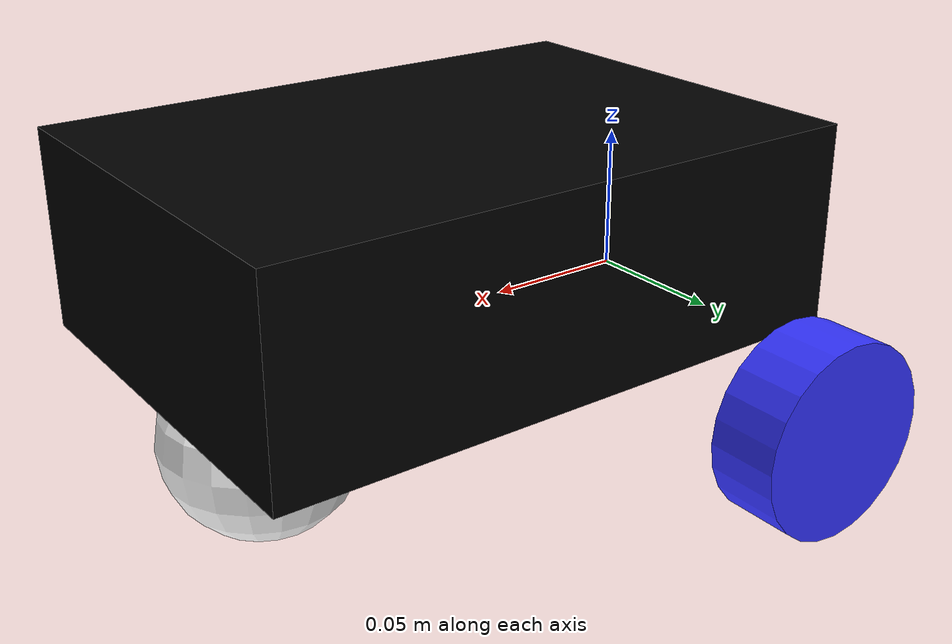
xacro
<?xml version="1.0"?>
<robot xmlns:xacro="http://www.ros.org/wiki/xacro" >

<xacro:include filename="inertial_macros.xacro" />

      <material name="white">
        <color rgba="1 1 1 1"/>
    </material>

    <material name="orange">
        <color rgba="1 0.3 0.1 1"/>
    </material>

    <material name="blue">
        <color rgba="0.2 0.2 1 1"/>
    </material>

    <material name="black">
        <color rgba="0 0 0 1"/>
    </material>

    <material name="red">
        <color rgba="1 0 0 1"/>
    </material>

 <!--base link -->

    <link name="base_link">

    </link>

 <!--chassis link -->

    <joint name="chassis_joint" type="fixed">
        <parent link="base_link"/>
        <child link="chassis"/>
        <origin xyz="-0.03 0 0"/>
    </joint>

    <link name="chassis">
        <visual>
            <origin xyz="0.105 0 0.03" rpy="0 0 0"/>
            <geometry>
                <box size="0.21 0.15 0.07"/>
            </geometry>
            <material name="black"/>
        </visual>
        <collision>
            <origin xyz="0.105 0 0.03" rpy="0 0 0"/>
            <geometry>
                <box size="0.21 0.15 0.07"/>
            </geometry>
        </collision>
        <xacro:inertial_box mass="0.5" x="0.21" y="0.15" z="0.07">
            <origin xyz="0.15 0 0.03" rpy="0 0 0"/>
        </xacro:inertial_box>

    </link>

    <!-- LEFT WHEEL -->

    <joint name="left_wheel_joint" type="continuous">
        <parent link="base_link"/>
        <child link="left_wheel"/>
        <origin xyz="0 0.1025 -0.025" rpy="-${pi/2} 0 0"/>
        <axis xyz="0 0 1"/>
        <limit effort="0.5" velocity="11.516"/>
    </joint>

    <link name="left_wheel">
        <visual>
            <geometry>
                <cylinder length="0.025" radius="0.034" />
            </geometry>
            <material name="blue"/>
        </visual>
        <collision>
            <geometry>
              <sphere radius="0.034" />
            </geometry>
        </collision>
        <xacro:inertial_cylinder mass="0.1" length="0.025" radius="0.034">
            <origin xyz="0 0 0" rpy="0 0 0"/>
        </xacro:inertial_cylinder>
    </link>

    <!-- RIGHT WHEEL -->

    <joint name="right_wheel_joint" type="continuous">
       <parent link="base_link"/>
        <child link="right_wheel"/>
        <origin xyz="0 -0.1025 -0.025" rpy="${pi/2} 0 0"/>
        <axis xyz="0 0 -1"/>
        <limit effort="0.5" velocity="11.516"/>
    </joint>

    <link name="right_wheel">
        <visual>
            <geometry>
                <cylinder length="0.025" radius="0.034" />
            </geometry>
            <material name="blue"/>
        </visual>
        <collision>
            <geometry>
               <sphere radius="0.034" />
            </geometry>
        </collision>
        <xacro:inertial_cylinder mass="0.1" length="0.025" radius="0.034">
            <origin xyz="0 0 0" rpy="0 0 0"/>
        </xacro:inertial_cylinder>
    </link>

    <!-- CASTER WHEEL -->

    <joint name="caster_wheel_joint" type="fixed">
        <parent link="chassis"/>
        <child link="caster_wheel"/>
        <origin xyz="0.175 0 -0.025" rpy="0 0 0"/>
    </joint>

    <link name="caster_wheel">
        <visual>
            <geometry>
                <sphere radius="0.034" />
            </geometry>
            <material name="white"/>
        </visual>
        <collision>
            <geometry>
                <sphere radius="0.034" />
            </geometry>
        </collision>
        <xacro:inertial_sphere mass="0.1" radius="0.034">
            <origin xyz="0 0 0" rpy="0 0 0"/>
        </xacro:inertial_sphere>
    </link>
    <gazebo reference="caster_wheel">
        <mu1 value="0.0"/>
        <mu2 value="0.0"/>
    </gazebo>

</robot>
